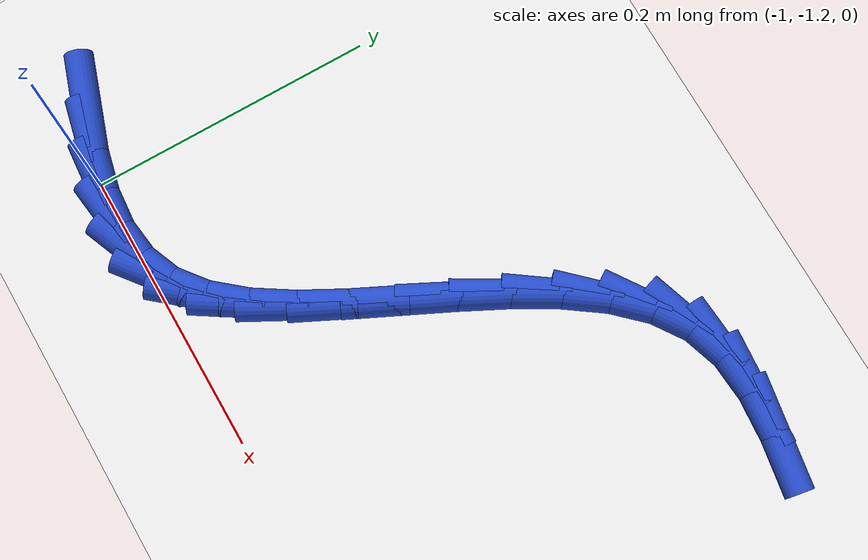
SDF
<sdf version="1.6">
 <world name="default">
  <model name="ground_plane">
   <static>1</static>
   <link name="link">
    <collision name="collision">
     <geometry><plane><normal>0 0 1</normal><size>100 100</size></plane></geometry>
     <surface><friction><ode><mu>100</mu><mu2>50</mu2></ode></friction></surface>
    </collision>
    <visual name="visual">
     <cast_shadows>0</cast_shadows>
     <geometry><plane><normal>0 0 1</normal><size>100 100</size></plane></geometry>
     <material>
      <script><uri>file://media/materials/scripts/gazebo.material</uri><name>Gazebo/WhiteGlow</name></script>
     </material>
    </visual>
   </link>
  </model>
  <model name="line">
   <link name="link_172">
    <pose>-1.0481852443954427 -1.1836316057182816 0.01 0 1.57 -0.3249792588425836</pose>
    <collision name="collision">
     <geometry><cylinder><radius>0.01</radius><length>0.08</length></cylinder></geometry>
    </collision>
    <visual name="visual">
     <material>
      <script><name>Gazebo/Blue</name><uri>file://media/materials/scripts/gazebo.material</uri></script>
     </material>
     <geometry><cylinder><radius>0.01</radius><length>0.08</length></cylinder></geometry>
    </visual>
   </link>
   <link name="link_173">
    <pose>-1.0183977815336271 -1.1936677365244404 0.01 0 1.57 -0.22506695955410586</pose>
    <collision name="collision">
     <geometry><cylinder><radius>0.01</radius><length>0.08</length></cylinder></geometry>
    </collision>
    <visual name="visual">
     <material>
      <script><name>Gazebo/Blue</name><uri>file://media/materials/scripts/gazebo.material</uri></script>
     </material>
     <geometry><cylinder><radius>0.01</radius><length>0.08</length></cylinder></geometry>
    </visual>
   </link>
   <link name="link_174">
    <pose>-0.9900004017496349 -1.2001691984487803 0.01 0 1.57 -0.07873216841033795</pose>
    <collision name="collision">
     <geometry><cylinder><radius>0.01</radius><length>0.08</length></cylinder></geometry>
    </collision>
    <visual name="visual">
     <material>
      <script><name>Gazebo/Blue</name><uri>file://media/materials/scripts/gazebo.material</uri></script>
     </material>
     <geometry><cylinder><radius>0.01</radius><length>0.08</length></cylinder></geometry>
    </visual>
   </link>
   <link name="link_175">
    <pose>-0.9632524626510267 -1.2022794838778368 0.01 0 1.57 0.1256433166248955</pose>
    <collision name="collision">
     <geometry><cylinder><radius>0.01</radius><length>0.08</length></cylinder></geometry>
    </collision>
    <visual name="visual">
     <material>
      <script><name>Gazebo/Blue</name><uri>file://media/materials/scripts/gazebo.material</uri></script>
     </material>
     <geometry><cylinder><radius>0.01</radius><length>0.08</length></cylinder></geometry>
    </visual>
   </link>
   <link name="link_176">
    <pose>-0.9384133218453654 -1.1991420851981447 0.01 0 1.57 0.38707480998653476</pose>
    <collision name="collision">
     <geometry><cylinder><radius>0.01</radius><length>0.08</length></cylinder></geometry>
    </collision>
    <visual name="visual">
     <material>
      <script><name>Gazebo/Blue</name><uri>file://media/materials/scripts/gazebo.material</uri></script>
     </material>
     <geometry><cylinder><radius>0.01</radius><length>0.08</length></cylinder></geometry>
    </visual>
   </link>
   <link name="link_177">
    <pose>-0.9157423369402115 -1.1899004947962393 0.01 0 1.57 0.6642649180460569</pose>
    <collision name="collision">
     <geometry><cylinder><radius>0.01</radius><length>0.08</length></cylinder></geometry>
    </collision>
    <visual name="visual">
     <material>
      <script><name>Gazebo/Blue</name><uri>file://media/materials/scripts/gazebo.material</uri></script>
     </material>
     <geometry><cylinder><radius>0.01</radius><length>0.08</length></cylinder></geometry>
    </visual>
   </link>
   <link name="link_178">
    <pose>-0.8954015654369083 -1.173974453957432 0.01 0 1.57 0.8702964044292247</pose>
    <collision name="collision">
     <geometry><cylinder><radius>0.01</radius><length>0.08</length></cylinder></geometry>
    </collision>
    <visual name="visual">
     <material>
      <script><name>Gazebo/Blue</name><uri>file://media/materials/scripts/gazebo.material</uri></script>
     </material>
     <geometry><cylinder><radius>0.01</radius><length>0.08</length></cylinder></geometry>
    </visual>
   </link>
   <link name="link_179">
    <pose>-0.8770507890836219 -1.15220973656958 0.01 0 1.57 1.0006376935418257</pose>
    <collision name="collision">
     <geometry><cylinder><radius>0.01</radius><length>0.08</length></cylinder></geometry>
    </collision>
    <visual name="visual">
     <material>
      <script><name>Gazebo/Blue</name><uri>file://media/materials/scripts/gazebo.material</uri></script>
     </material>
     <geometry><cylinder><radius>0.01</radius><length>0.08</length></cylinder></geometry>
    </visual>
   </link>
   <link name="link_180">
    <pose>-0.8601881896044745 -1.1259109220698857 0.01 0 1.57 1.077470437337981</pose>
    <collision name="collision">
     <geometry><cylinder><radius>0.01</radius><length>0.08</length></cylinder></geometry>
    </collision>
    <visual name="visual">
     <material>
      <script><name>Gazebo/Blue</name><uri>file://media/materials/scripts/gazebo.material</uri></script>
     </material>
     <geometry><cylinder><radius>0.01</radius><length>0.08</length></cylinder></geometry>
    </visual>
   </link>
   <link name="link_181">
    <pose>-0.8443118717150014 -1.0963828085339242 0.01 0 1.57 1.115689705253317</pose>
    <collision name="collision">
     <geometry><cylinder><radius>0.01</radius><length>0.08</length></cylinder></geometry>
    </collision>
    <visual name="visual">
     <material>
      <script><name>Gazebo/Blue</name><uri>file://media/materials/scripts/gazebo.material</uri></script>
     </material>
     <geometry><cylinder><radius>0.01</radius><length>0.08</length></cylinder></geometry>
    </visual>
   </link>
   <link name="link_182">
    <pose>-0.8289199401307384 -1.0649301940372717 0.01 0 1.57 1.1229031910309815</pose>
    <collision name="collision">
     <geometry><cylinder><radius>0.01</radius><length>0.08</length></cylinder></geometry>
    </collision>
    <visual name="visual">
     <material>
      <script><name>Gazebo/Blue</name><uri>file://media/materials/scripts/gazebo.material</uri></script>
     </material>
     <geometry><cylinder><radius>0.01</radius><length>0.08</length></cylinder></geometry>
    </visual>
   </link>
   <link name="link_183">
    <pose>-0.8135104995672211 -1.032857876655504 0.01 0 1.57 1.1011710532743617</pose>
    <collision name="collision">
     <geometry><cylinder><radius>0.01</radius><length>0.08</length></cylinder></geometry>
    </collision>
    <visual name="visual">
     <material>
      <script><name>Gazebo/Blue</name><uri>file://media/materials/scripts/gazebo.material</uri></script>
     </material>
     <geometry><cylinder><radius>0.01</radius><length>0.08</length></cylinder></geometry>
    </visual>
   </link>
   <link name="link_184">
    <pose>-0.7975816547399849 -1.001470654464196 0.01 0 1.57 1.0477695111025138</pose>
    <collision name="collision">
     <geometry><cylinder><radius>0.01</radius><length>0.08</length></cylinder></geometry>
    </collision>
    <visual name="visual">
     <material>
      <script><name>Gazebo/Blue</name><uri>file://media/materials/scripts/gazebo.material</uri></script>
     </material>
     <geometry><cylinder><radius>0.01</radius><length>0.08</length></cylinder></geometry>
    </visual>
   </link>
   <link name="link_185">
    <pose>-0.7806315103645657 -0.9720733255389256 0.01 0 1.57 0.9549084205405566</pose>
    <collision name="collision">
     <geometry><cylinder><radius>0.01</radius><length>0.08</length></cylinder></geometry>
    </collision>
    <visual name="visual">
     <material>
      <script><name>Gazebo/Blue</name><uri>file://media/materials/scripts/gazebo.material</uri></script>
     </material>
     <geometry><cylinder><radius>0.01</radius><length>0.08</length></cylinder></geometry>
    </visual>
   </link>
   <link name="link_186">
    <pose>-0.7621581711564998 -0.9459706879552677 0.01 0 1.57 0.8093145810476491</pose>
    <collision name="collision">
     <geometry><cylinder><radius>0.01</radius><length>0.08</length></cylinder></geometry>
    </collision>
    <visual name="visual">
     <material>
      <script><name>Gazebo/Blue</name><uri>file://media/materials/scripts/gazebo.material</uri></script>
     </material>
     <geometry><cylinder><radius>0.01</radius><length>0.08</length></cylinder></geometry>
    </visual>
   </link>
   <link name="link_187">
    <pose>-0.7416597418313223 -0.9244675397887985 0.01 0 1.57 0.5954396168804728</pose>
    <collision name="collision">
     <geometry><cylinder><radius>0.01</radius><length>0.08</length></cylinder></geometry>
    </collision>
    <visual name="visual">
     <material>
      <script><name>Gazebo/Blue</name><uri>file://media/materials/scripts/gazebo.material</uri></script>
     </material>
     <geometry><cylinder><radius>0.01</radius><length>0.08</length></cylinder></geometry>
    </visual>
   </link>
   <link name="link_188">
    <pose>-0.7186343271045684 -0.9088686791150933 0.01 0 1.57 0.31705654072413336</pose>
    <collision name="collision">
     <geometry><cylinder><radius>0.01</radius><length>0.08</length></cylinder></geometry>
    </collision>
    <visual name="visual">
     <material>
      <script><name>Gazebo/Blue</name><uri>file://media/materials/scripts/gazebo.material</uri></script>
     </material>
     <geometry><cylinder><radius>0.01</radius><length>0.08</length></cylinder></geometry>
    </visual>
   </link>
   <link name="link_189">
    <pose>-0.6926353090274345 -0.9003377286294911 0.01 0 1.57 0.07150040825632366</pose>
    <collision name="collision">
     <geometry><cylinder><radius>0.01</radius><length>0.08</length></cylinder></geometry>
    </collision>
    <visual name="visual">
     <material>
      <script><name>Gazebo/Blue</name><uri>file://media/materials/scripts/gazebo.material</uri></script>
     </material>
     <geometry><cylinder><radius>0.01</radius><length>0.08</length></cylinder></geometry>
    </visual>
   </link>
   <link name="link_190">
    <pose>-0.6639045534232799 -0.898279960029341 0.01 0 1.57 -0.08524688078621419</pose>
    <collision name="collision">
     <geometry><cylinder><radius>0.01</radius><length>0.08</length></cylinder></geometry>
    </collision>
    <visual name="visual">
     <material>
      <script><name>Gazebo/Blue</name><uri>file://media/materials/scripts/gazebo.material</uri></script>
     </material>
     <geometry><cylinder><radius>0.01</radius><length>0.08</length></cylinder></geometry>
    </visual>
   </link>
   <link name="link_191">
    <pose>-0.6331509147419941 -0.9009079808553225 0.01 0 1.57 -0.1700194252693606</pose>
    <collision name="collision">
     <geometry><cylinder><radius>0.01</radius><length>0.08</length></cylinder></geometry>
    </collision>
    <visual name="visual">
     <material>
      <script><name>Gazebo/Blue</name><uri>file://media/materials/scripts/gazebo.material</uri></script>
     </material>
     <geometry><cylinder><radius>0.01</radius><length>0.08</length></cylinder></geometry>
    </visual>
   </link>
  </model>
 </world>
</sdf>
